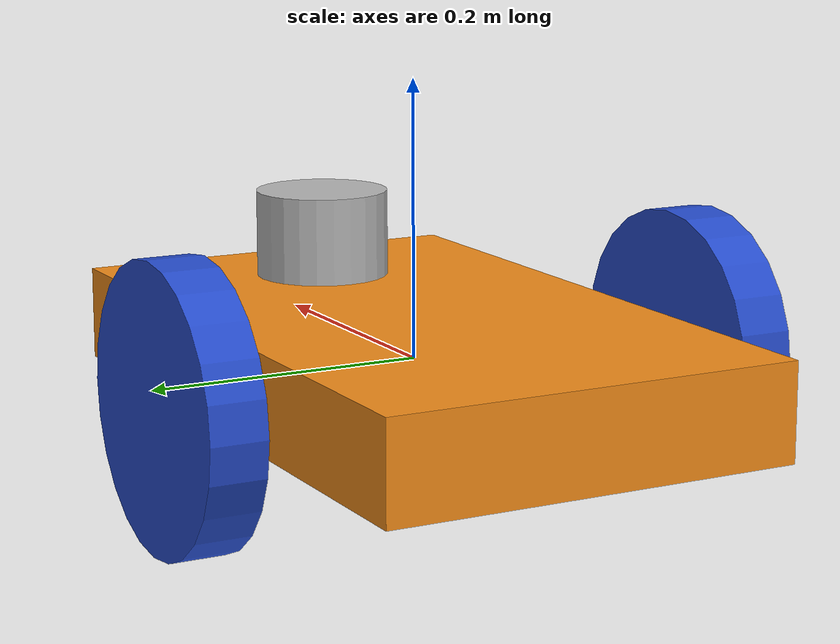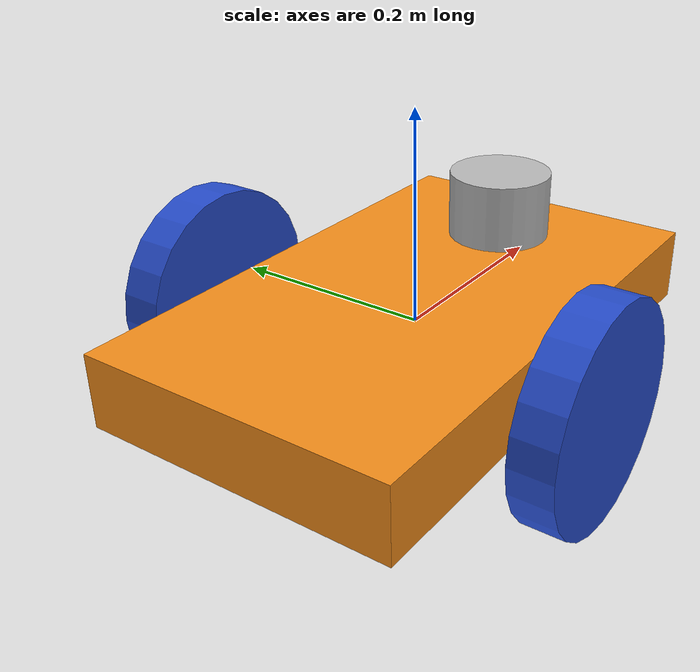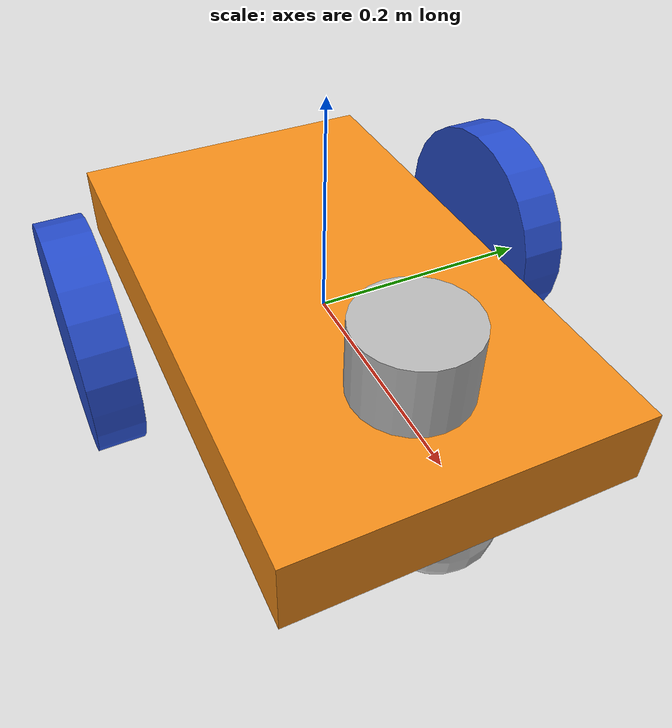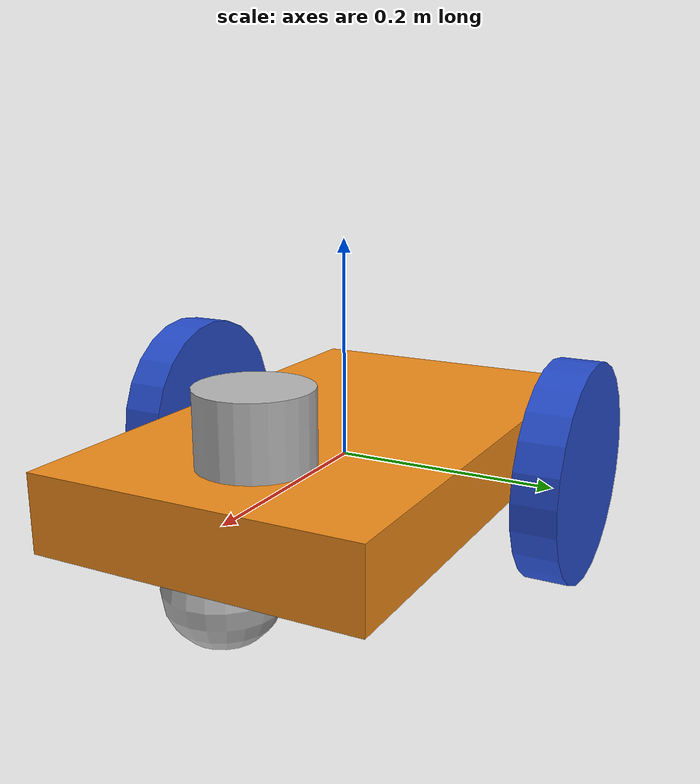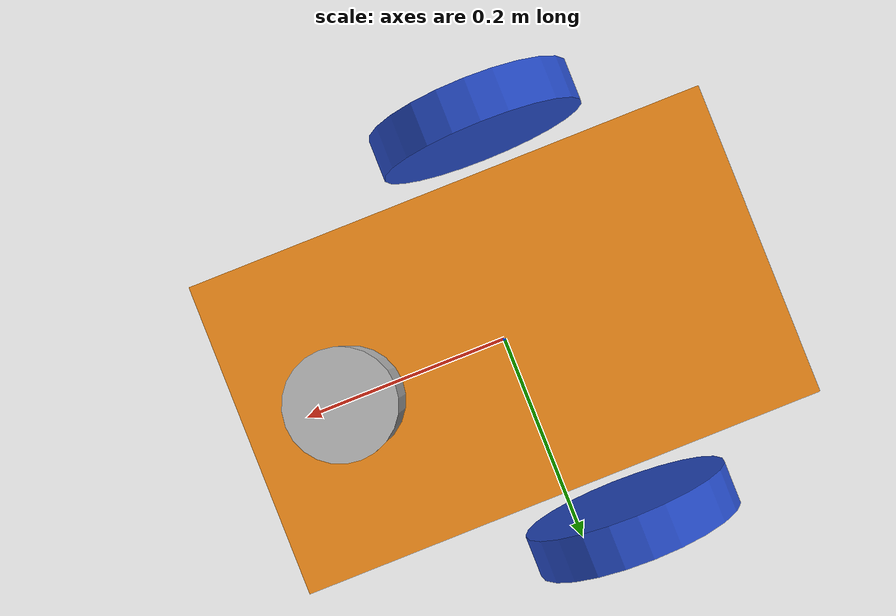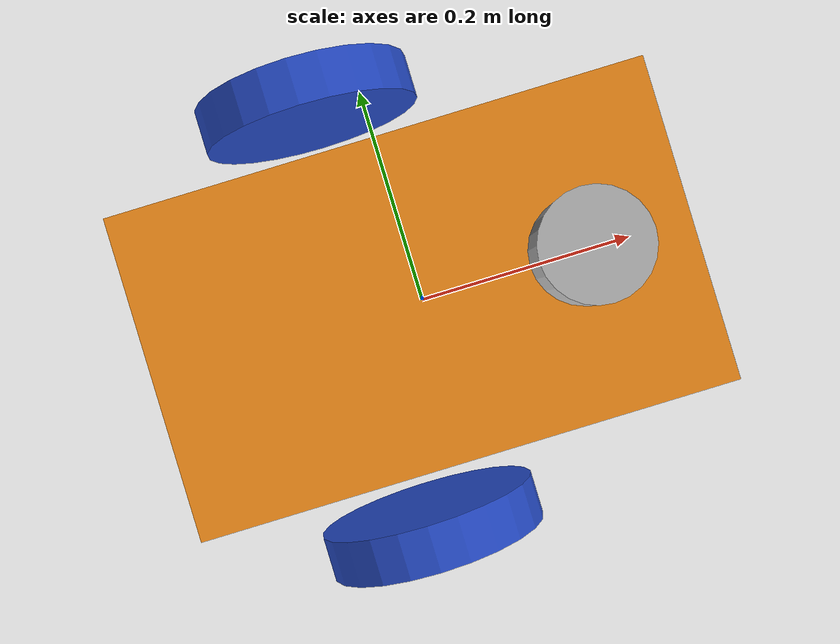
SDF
<sdf version='1.7'>
  <model name='m2wr'>
    <link name='link_chassis'>
      <inertial>
        <pose>0.025 0 0.091667 0 -0 0</pose>
        <mass>10</mass>
        <inertia>
          <ixx>0.0430833</ixx>
          <ixy>0</ixy>
          <ixz>0.00625</ixz>
          <iyy>0.1285</iyy>
          <iyz>0</iyz>
          <izz>0.126208</izz>
        </inertia>
      </inertial>
      <collision name='link_chassis_fixed_joint_lump__collision_chassis_collision'>
        <pose>0 0 0 0 -0 0</pose>
        <geometry>
          <box>
            <size>0.5 0.3 0.07</size>
          </box>
        </geometry>
      </collision>
      <collision name='link_chassis_fixed_joint_lump__caster_front_collision_collision_1'>
        <pose>0.35 0 -0.05 0 -0 0</pose>
        <geometry>
          <sphere>
            <radius>0.05</radius>
          </sphere>
        </geometry>
      </collision>
      <collision name='link_chassis_fixed_joint_lump__sensor_laser_collision_2'>
        <pose>0.15 0 0.05 0 -0 0</pose>
        <geometry>
          <cylinder>
            <length>0.1</length>
            <radius>0.05</radius>
          </cylinder>
        </geometry>
        <surface>
          <contact>
            <ode/>
          </contact>
          <friction>
            <ode/>
          </friction>
        </surface>
      </collision>
      <visual name='link_chassis_visual'>
        <pose>0 0 0 0 -0 0</pose>
        <geometry>
          <box>
            <size>0.5 0.3 0.07</size>
          </box>
        </geometry>
        <material>
          <script>
            <name>Gazebo/Orange</name>
            <uri>file://media/materials/scripts/gazebo.material</uri>
          </script>
        </material>
      </visual>
      <visual name='link_chassis_fixed_joint_lump__caster_front_visual_visual_1'>
        <pose>0.2 0 -0.05 0 -0 0</pose>
        <geometry>
          <sphere>
            <radius>0.05</radius>
          </sphere>
        </geometry>
      </visual>
      <visual name='link_chassis_fixed_joint_lump__sensor_laser_visual_2'>
        <pose>0.15 0 0.05 0 -0 0</pose>
        <geometry>
          <cylinder>
            <length>0.1</length>
            <radius>0.05</radius>
          </cylinder>
        </geometry>
      </visual>
      <sensor name='head_hokuyo_sensor' type='ray'>
        <visualize>0</visualize>
        <update_rate>20</update_rate>
        <ray>
          <scan>
            <horizontal>
              <samples>720</samples>
              <resolution>1</resolution>
              <min_angle>-1.5708</min_angle>
              <max_angle>1.5708</max_angle>
            </horizontal>
          </scan>
          <range>
            <min>0.1</min>
            <max>10</max>
            <resolution>0.01</resolution>
          </range>
          <noise>
            <type>gaussian</type>
            <mean>0</mean>
            <stddev>0.01</stddev>
          </noise>
        </ray>
        <plugin name='gazebo_ros_head_hokuyo_controller' filename='libgazebo_ros_laser.so'>
          <topicName>/m2wr/laser/scan</topicName>
          <frameName>sensor_laser</frameName>
        </plugin>
        <pose>0.15 0 0.05 0 -0 0</pose>
      </sensor>
    </link>
    <joint name='joint_left_wheel' type='revolute'>
      <pose relative_to='link_chassis'>-0.05 -0.2 0 0 -0 0</pose>
      <parent>link_chassis</parent>
      <child>link_left_wheel</child>
      <axis>
        <xyz>0 1 0</xyz>
        <limit>
          <effort>10000</effort>
          <velocity>1000</velocity>
          <lower>-1e+16</lower>
          <upper>1e+16</upper>
        </limit>
        <dynamics>
          <spring_reference>0</spring_reference>
          <spring_stiffness>0</spring_stiffness>
        </dynamics>
      </axis>
    </joint>
    <link name='link_left_wheel'>
      <pose relative_to='joint_left_wheel'>0 0 0 0 -0 0</pose>
      <inertial>
        <pose>0 0 0 0 1.5707 1.5707</pose>
        <mass>0.4</mass>
        <inertia>
          <ixx>0.000526667</ixx>
          <ixy>0</ixy>
          <ixz>0</ixz>
          <iyy>0.000526667</iyy>
          <iyz>0</iyz>
          <izz>0.001</izz>
        </inertia>
      </inertial>
      <collision name='link_left_wheel_fixed_joint_lump__link_right_wheel_collision_collision'>
        <pose>0 0 0 -1.5707 1.5708 0</pose>
        <geometry>
          <cylinder>
            <length>0.04</length>
            <radius>0.1</radius>
          </cylinder>
        </geometry>
      </collision>
      <visual name='link_left_wheel_visual_visual'>
        <pose>0 0 0 -1.5707 1.5708 0</pose>
        <geometry>
          <cylinder>
            <length>0.04</length>
            <radius>0.1</radius>
          </cylinder>
        </geometry>
        <material>
          <script>
            <name>Gazebo/Blue</name>
            <uri>file://media/materials/scripts/gazebo.material</uri>
          </script>
        </material>
      </visual>
    </link>
    <joint name='joint_right_wheel' type='revolute'>
      <pose relative_to='link_chassis'>-0.05 0.2 0 0 -0 0</pose>
      <parent>link_chassis</parent>
      <child>link_right_wheel</child>
      <axis>
        <xyz>0 1 0</xyz>
        <limit>
          <effort>10000</effort>
          <velocity>1000</velocity>
          <lower>-1e+16</lower>
          <upper>1e+16</upper>
        </limit>
        <dynamics>
          <spring_reference>0</spring_reference>
          <spring_stiffness>0</spring_stiffness>
        </dynamics>
      </axis>
    </joint>
    <link name='link_right_wheel'>
      <pose relative_to='joint_right_wheel'>0 0 0 0 -0 0</pose>
      <inertial>
        <pose>0 0 0 0 1.5707 1.5707</pose>
        <mass>0.4</mass>
        <inertia>
          <ixx>0.000526667</ixx>
          <ixy>0</ixy>
          <ixz>0</ixz>
          <iyy>0.000526667</iyy>
          <iyz>0</iyz>
          <izz>0.001</izz>
        </inertia>
      </inertial>
      <collision name='link_right_wheel_collision_collision'>
        <pose>0 0 0 -1.5707 1.5708 0</pose>
        <geometry>
          <cylinder>
            <length>0.04</length>
            <radius>0.1</radius>
          </cylinder>
        </geometry>
        <surface>
          <contact>
            <ode/>
          </contact>
          <friction>
            <ode/>
          </friction>
        </surface>
      </collision>
      <visual name='link_right_wheel_visual_visual'>
        <pose>0 0 0 -1.5707 1.5708 0</pose>
        <geometry>
          <cylinder>
            <length>0.04</length>
            <radius>0.1</radius>
          </cylinder>
        </geometry>
        <material>
          <script>
            <name>Gazebo/Blue</name>
            <uri>file://media/materials/scripts/gazebo.material</uri>
          </script>
        </material>
      </visual>
    </link>
    <plugin name='differential_drive_controller' filename='libgazebo_ros_diff_drive.so'>
      <alwaysOn>1</alwaysOn>
      <updateRate>20</updateRate>
      <leftJoint>joint_left_wheel</leftJoint>
      <rightJoint>joint_right_wheel</rightJoint>
      <wheelSeparation>0.4</wheelSeparation>
      <wheelDiameter>0.2</wheelDiameter>
      <torque>0.1</torque>
      <commandTopic>cmd_vel</commandTopic>
      <odometryTopic>odom</odometryTopic>
      <odometryFrame>odom</odometryFrame>
      <robotBaseFrame>link_chassis</robotBaseFrame>
    </plugin>
    <frame name='joint_sensor_laser' attached_to='link_chassis'>
      <pose>0.15 0 0.05 0 -0 0</pose>
    </frame>
    <frame name='sensor_laser' attached_to='joint_sensor_laser'/>
  </model>
</sdf>
